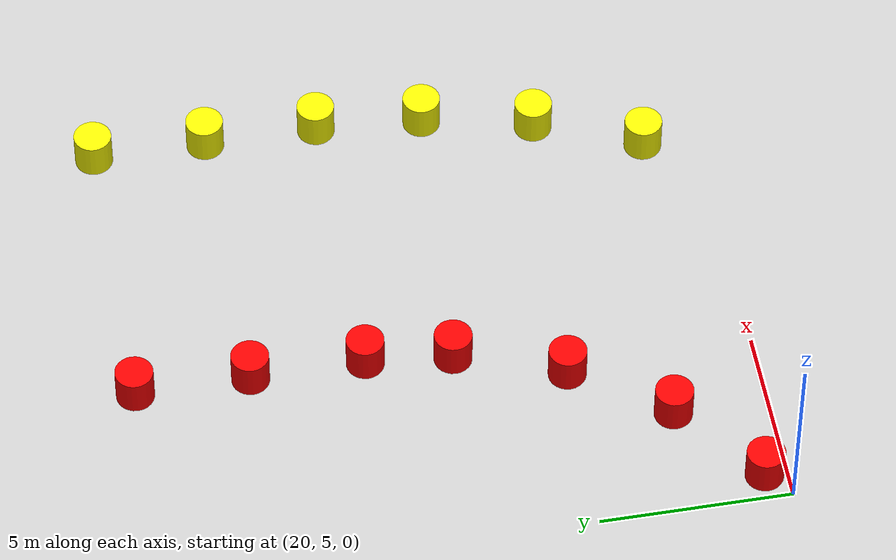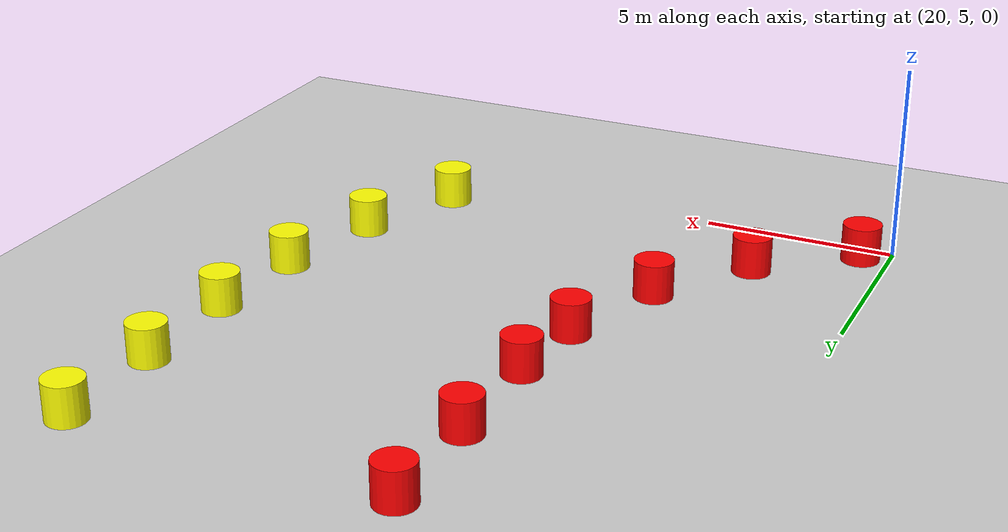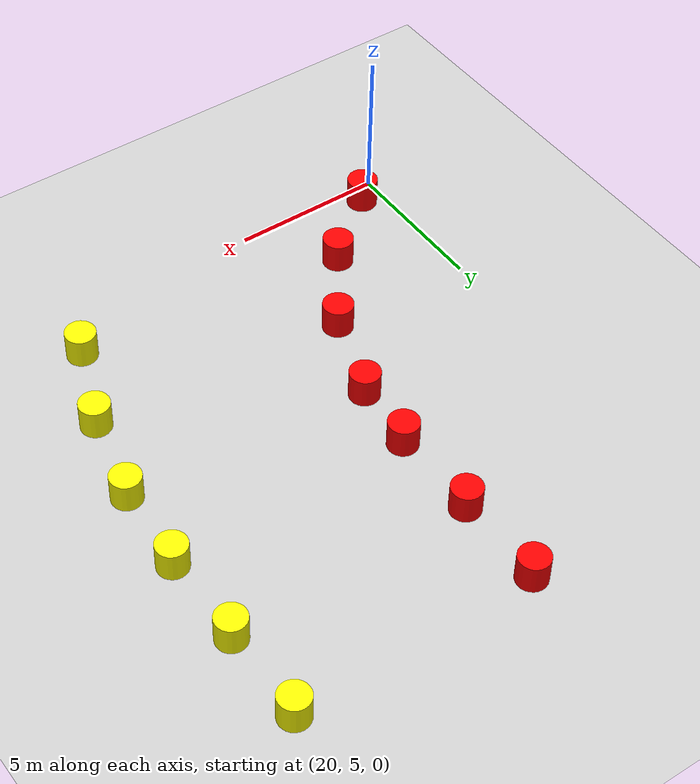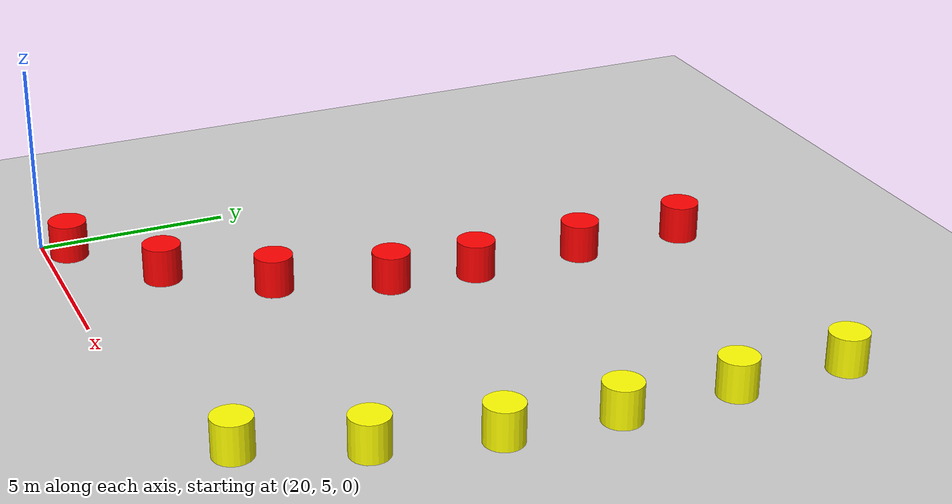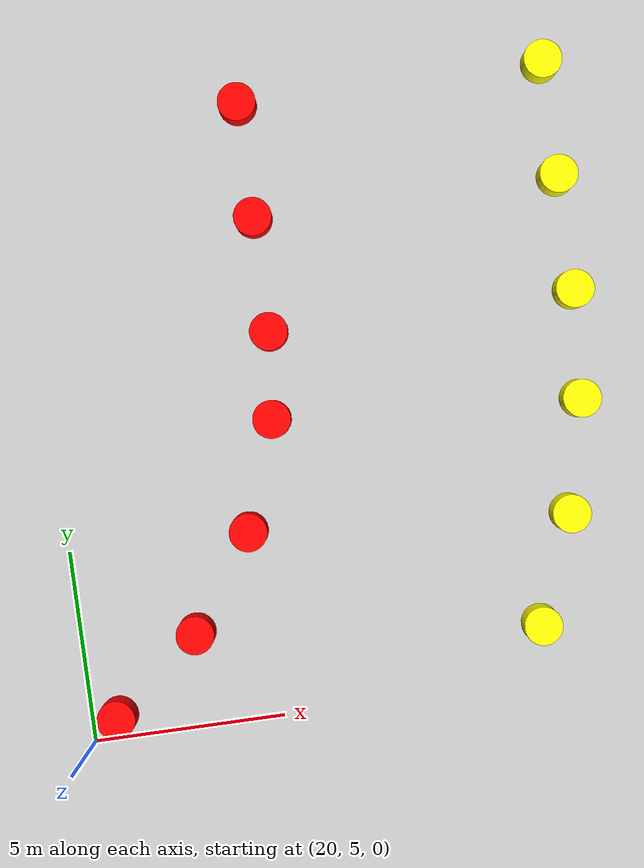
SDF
<sdf version="1.9">
 <world name="empty">
  <model name="ground_plane">
   <static>true</static>
   <link name="link">
    <collision name="collision">
     <geometry><plane><normal>0 0 1</normal><size>1000 1000</size></plane></geometry>
    </collision>
    <visual name="visual">
     <geometry><plane><normal>0 0 1</normal><size>1000 1000</size></plane></geometry>
     <material>
      <ambient>0.8 0.8 0.8 1</ambient>
      <diffuse>0.8 0.8 0.8 1</diffuse>
      <specular>0.8 0.8 0.8 1</specular>
     </material>
    </visual>
    <inertial>
     <mass>1</mass>
     <inertia><ixx>1</ixx><ixy>0</ixy><ixz>0</ixz><iyy>1</iyy><iyz>0</iyz><izz>1</izz></inertia>
    </inertial>
   </link>
  </model>
  <model name="red_cone_8">
   <pose>20.7068740427449 5.596192863512966 0.5 0 -0 0</pose>
   <link name="cylinder_link">
    <inertial>
     <inertia>
      <ixx>0.14580000000000001</ixx>
      <ixy>0</ixy>
      <ixz>0</ixz>
      <iyy>0.14580000000000001</iyy>
      <iyz>0</iyz>
      <izz>0.125</izz>
     </inertia>
     <mass>1</mass>
    </inertial>
    <collision name="cylinder_collision">
     <geometry><cylinder><radius>0.5</radius><length>1</length></cylinder></geometry>
    </collision>
    <visual name="cylinder_visual">
     <geometry><cylinder><radius>0.5</radius><length>1</length></cylinder></geometry>
     <material><ambient>1 0 0 1</ambient><diffuse>1 0 0 1</diffuse><specular>1 1 1 1</specular></material>
    </visual>
   </link>
   <static>false</static>
  </model>
  <model name="red_cone_9">
   <pose>23.02894641681081 7.48095621531695 0.5 0 -0 0</pose>
   <link name="cylinder_link">
    <inertial>
     <inertia>
      <ixx>0.14580000000000001</ixx>
      <ixy>0</ixy>
      <ixz>0</ixz>
      <iyy>0.14580000000000001</iyy>
      <iyz>0</iyz>
      <izz>0.125</izz>
     </inertia>
     <mass>1</mass>
    </inertial>
    <collision name="cylinder_collision">
     <geometry><cylinder><radius>0.5</radius><length>1</length></cylinder></geometry>
    </collision>
    <visual name="cylinder_visual">
     <geometry><cylinder><radius>0.5</radius><length>1</length></cylinder></geometry>
     <material><ambient>1 0 0 1</ambient><diffuse>1 0 0 1</diffuse><specular>1 1 1 1</specular></material>
    </visual>
   </link>
   <static>false</static>
  </model>
  <model name="red_cone_10">
   <pose>24.75751688185402 9.921529334501004 0.5 0 -0 0</pose>
   <link name="cylinder_link">
    <inertial>
     <inertia>
      <ixx>0.14580000000000001</ixx>
      <ixy>0</ixy>
      <ixz>0</ixz>
      <iyy>0.14580000000000001</iyy>
      <iyz>0</iyz>
      <izz>0.125</izz>
     </inertia>
     <mass>1</mass>
    </inertial>
    <collision name="cylinder_collision">
     <geometry><cylinder><radius>0.5</radius><length>1</length></cylinder></geometry>
    </collision>
    <visual name="cylinder_visual">
     <geometry><cylinder><radius>0.5</radius><length>1</length></cylinder></geometry>
     <material><ambient>1 0 0 1</ambient><diffuse>1 0 0 1</diffuse><specular>1 1 1 1</specular></material>
    </visual>
   </link>
   <static>false</static>
  </model>
  <model name="red_cone_11">
   <pose>25.7648090376316 12.737504390429667 0.5 0 -0 0</pose>
   <link name="cylinder_link">
    <inertial>
     <inertia>
      <ixx>0.14580000000000001</ixx>
      <ixy>0</ixy>
      <ixz>0</ixz>
      <iyy>0.14580000000000001</iyy>
      <iyz>0</iyz>
      <izz>0.125</izz>
     </inertia>
     <mass>1</mass>
    </inertial>
    <collision name="cylinder_collision">
     <geometry><cylinder><radius>0.5</radius><length>1</length></cylinder></geometry>
    </collision>
    <visual name="cylinder_visual">
     <geometry><cylinder><radius>0.5</radius><length>1</length></cylinder></geometry>
     <material><ambient>1 0 0 1</ambient><diffuse>1 0 0 1</diffuse><specular>1 1 1 1</specular></material>
    </visual>
   </link>
   <static>false</static>
  </model>
  <model name="red_cone_12">
   <pose>26.0 15.0 0.5 0 -0 0</pose>
   <link name="cylinder_link">
    <inertial>
     <inertia>
      <ixx>0.14580000000000001</ixx>
      <ixy>0</ixy>
      <ixz>0</ixz>
      <iyy>0.14580000000000001</iyy>
      <iyz>0</iyz>
      <izz>0.125</izz>
     </inertia>
     <mass>1</mass>
    </inertial>
    <collision name="cylinder_collision">
     <geometry><cylinder><radius>0.5</radius><length>1</length></cylinder></geometry>
    </collision>
    <visual name="cylinder_visual">
     <geometry><cylinder><radius>0.5</radius><length>1</length></cylinder></geometry>
     <material><ambient>1 0 0 1</ambient><diffuse>1 0 0 1</diffuse><specular>1 1 1 1</specular></material>
    </visual>
   </link>
   <static>false</static>
  </model>
  <model name="red_cone_13">
   <pose>26.0 18.0 0.5 0 -0 0</pose>
   <link name="cylinder_link">
    <inertial>
     <inertia>
      <ixx>0.14580000000000001</ixx>
      <ixy>0</ixy>
      <ixz>0</ixz>
      <iyy>0.14580000000000001</iyy>
      <iyz>0</iyz>
      <izz>0.125</izz>
     </inertia>
     <mass>1</mass>
    </inertial>
    <collision name="cylinder_collision">
     <geometry><cylinder><radius>0.5</radius><length>1</length></cylinder></geometry>
    </collision>
    <visual name="cylinder_visual">
     <geometry><cylinder><radius>0.5</radius><length>1</length></cylinder></geometry>
     <material><ambient>1 0 0 1</ambient><diffuse>1 0 0 1</diffuse><specular>1 1 1 1</specular></material>
    </visual>
   </link>
   <static>false</static>
  </model>
  <model name="red_cone_14">
   <pose>26.0 21.0 0.5 0 -0 0</pose>
   <link name="cylinder_link">
    <inertial>
     <inertia>
      <ixx>0.14580000000000001</ixx>
      <ixy>0</ixy>
      <ixz>0</ixz>
      <iyy>0.14580000000000001</iyy>
      <iyz>0</iyz>
      <izz>0.125</izz>
     </inertia>
     <mass>1</mass>
    </inertial>
    <collision name="cylinder_collision">
     <geometry><cylinder><radius>0.5</radius><length>1</length></cylinder></geometry>
    </collision>
    <visual name="cylinder_visual">
     <geometry><cylinder><radius>0.5</radius><length>1</length></cylinder></geometry>
     <material><ambient>1 0 0 1</ambient><diffuse>1 0 0 1</diffuse><specular>1 1 1 1</specular></material>
    </visual>
   </link>
   <static>false</static>
  </model>
  <model name="yellow_cone_13">
   <pose>31.978064716182367 6.470913384592498 0.5 0 -0 0</pose>
   <link name="cylinder_link">
    <inertial>
     <inertia>
      <ixx>0.14580000000000001</ixx>
      <ixy>0</ixy>
      <ixz>0</ixz>
      <iyy>0.14580000000000001</iyy>
      <iyz>0</iyz>
      <izz>0.125</izz>
     </inertia>
     <mass>1</mass>
    </inertial>
    <collision name="cylinder_collision">
     <geometry><cylinder><radius>0.5</radius><length>1</length></cylinder></geometry>
    </collision>
    <visual name="cylinder_visual">
     <geometry><cylinder><radius>0.5</radius><length>1</length></cylinder></geometry>
     <material><ambient>1 1 0 1</ambient><diffuse>1 1 0 1</diffuse><specular>1 1 1 1</specular></material>
    </visual>
   </link>
   <static>false</static>
  </model>
  <model name="yellow_cone_14">
   <pose>33.107975276268135 9.246633038466769 0.5 0 -0 0</pose>
   <link name="cylinder_link">
    <inertial>
     <inertia>
      <ixx>0.14580000000000001</ixx>
      <ixy>0</ixy>
      <ixz>0</ixz>
      <iyy>0.14580000000000001</iyy>
      <iyz>0</iyz>
      <izz>0.125</izz>
     </inertia>
     <mass>1</mass>
    </inertial>
    <collision name="cylinder_collision">
     <geometry><cylinder><radius>0.5</radius><length>1</length></cylinder></geometry>
    </collision>
    <visual name="cylinder_visual">
     <geometry><cylinder><radius>0.5</radius><length>1</length></cylinder></geometry>
     <material><ambient>1 1 0 1</ambient><diffuse>1 1 0 1</diffuse><specular>1 1 1 1</specular></material>
    </visual>
   </link>
   <static>false</static>
  </model>
  <model name="yellow_cone_15">
   <pose>33.78737759616636 12.165490684604066 0.5 0 -0 0</pose>
   <link name="cylinder_link">
    <inertial>
     <inertia>
      <ixx>0.14580000000000001</ixx>
      <ixy>0</ixy>
      <ixz>0</ixz>
      <iyy>0.14580000000000001</iyy>
      <iyz>0</iyz>
      <izz>0.125</izz>
     </inertia>
     <mass>1</mass>
    </inertial>
    <collision name="cylinder_collision">
     <geometry><cylinder><radius>0.5</radius><length>1</length></cylinder></geometry>
    </collision>
    <visual name="cylinder_visual">
     <geometry><cylinder><radius>0.5</radius><length>1</length></cylinder></geometry>
     <material><ambient>1 1 0 1</ambient><diffuse>1 1 0 1</diffuse><specular>1 1 1 1</specular></material>
    </visual>
   </link>
   <static>false</static>
  </model>
  <model name="yellow_cone_16">
   <pose>34.0 15.0 0.5 0 -0 0</pose>
   <link name="cylinder_link">
    <inertial>
     <inertia>
      <ixx>0.14580000000000001</ixx>
      <ixy>0</ixy>
      <ixz>0</ixz>
      <iyy>0.14580000000000001</iyy>
      <iyz>0</iyz>
      <izz>0.125</izz>
     </inertia>
     <mass>1</mass>
    </inertial>
    <collision name="cylinder_collision">
     <geometry><cylinder><radius>0.5</radius><length>1</length></cylinder></geometry>
    </collision>
    <visual name="cylinder_visual">
     <geometry><cylinder><radius>0.5</radius><length>1</length></cylinder></geometry>
     <material><ambient>1 1 0 1</ambient><diffuse>1 1 0 1</diffuse><specular>1 1 1 1</specular></material>
    </visual>
   </link>
   <static>false</static>
  </model>
  <model name="yellow_cone_17">
   <pose>34.0 18.0 0.5 0 -0 0</pose>
   <link name="cylinder_link">
    <inertial>
     <inertia>
      <ixx>0.14580000000000001</ixx>
      <ixy>0</ixy>
      <ixz>0</ixz>
      <iyy>0.14580000000000001</iyy>
      <iyz>0</iyz>
      <izz>0.125</izz>
     </inertia>
     <mass>1</mass>
    </inertial>
    <collision name="cylinder_collision">
     <geometry><cylinder><radius>0.5</radius><length>1</length></cylinder></geometry>
    </collision>
    <visual name="cylinder_visual">
     <geometry><cylinder><radius>0.5</radius><length>1</length></cylinder></geometry>
     <material><ambient>1 1 0 1</ambient><diffuse>1 1 0 1</diffuse><specular>1 1 1 1</specular></material>
    </visual>
   </link>
   <static>false</static>
  </model>
  <model name="yellow_cone_18">
   <pose>34.0 21.0 0.5 0 -0 0</pose>
   <link name="cylinder_link">
    <inertial>
     <inertia>
      <ixx>0.14580000000000001</ixx>
      <ixy>0</ixy>
      <ixz>0</ixz>
      <iyy>0.14580000000000001</iyy>
      <iyz>0</iyz>
      <izz>0.125</izz>
     </inertia>
     <mass>1</mass>
    </inertial>
    <collision name="cylinder_collision">
     <geometry><cylinder><radius>0.5</radius><length>1</length></cylinder></geometry>
    </collision>
    <visual name="cylinder_visual">
     <geometry><cylinder><radius>0.5</radius><length>1</length></cylinder></geometry>
     <material><ambient>1 1 0 1</ambient><diffuse>1 1 0 1</diffuse><specular>1 1 1 1</specular></material>
    </visual>
   </link>
   <static>false</static>
  </model>
 </world>
</sdf>
